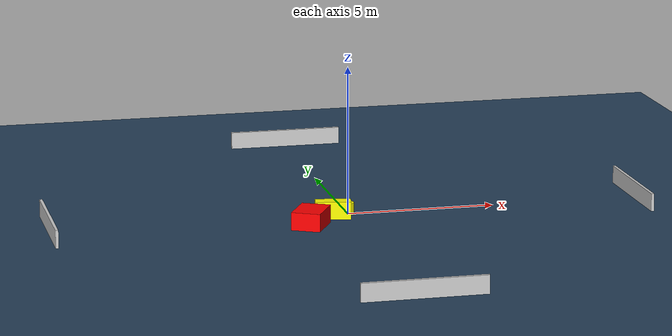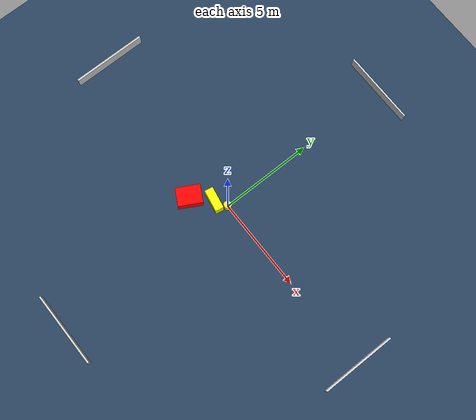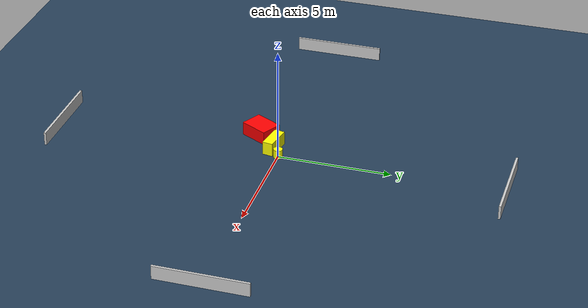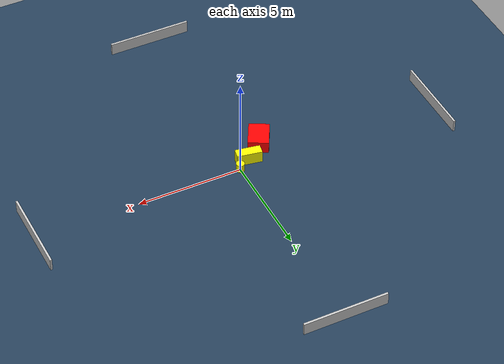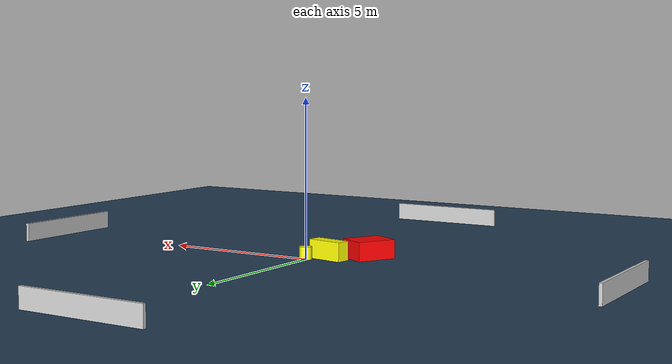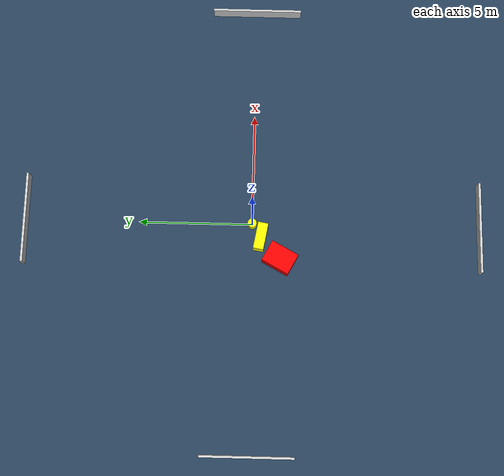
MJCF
<?xml version="1.0" ?>
<mujoco model="generated_environment">
  <option timestep="0.01" integrator="RK4" cone="elliptic"/>
  <default>
    <geom density="1"/>
  </default>
  <asset>
    <texture builtin="gradient" height="3072" name="skybox" rgb1="0.3 0.5 0.7" rgb2="0 0 0" type="skybox" width="512"/>
    <texture builtin="checker" height="300" name="groundplane" rgb1="0.2 0.3 0.4" rgb2="0.1 0.2 0.3" type="2d" width="300"/>
    <material name="groundplane" reflectance="0.2" texrepeat="5 5" texture="groundplane"/>
  </asset>
  <worldbody>
    <light dir="0 0 -1" directional="true" pos="0 0 1.5"/>
    <geom condim="3" friction="0.5 0.005 0.001" material="groundplane" name="floor" pos="0 0 0" size="0 0 0.05" type="plane"/>
    <body name="walls">
      <geom name="wall_1" condim="4" pos="-10.0 0.0 0.3" rgba="0.800000011920929 0.800000011920929 0.800000011920929 1.0" size="0.05 2.0 0.3" type="box"/>
      <geom name="wall_2" condim="4" pos="10.0 0.0 0.3" rgba="0.800000011920929 0.800000011920929 0.800000011920929 1.0" size="0.05 2.0 0.3" type="box"/>
      <geom name="wall_3" condim="4" pos="0.0 -10.0 0.3" rgba="0.800000011920929 0.800000011920929 0.800000011920929 1.0" size="2.0 0.05 0.3" type="box"/>
      <geom name="wall_4" condim="4" pos="0.0 10.0 0.3" rgba="0.800000011920929 0.800000011920929 0.800000011920929 1.0" size="2.0 0.05 0.3" type="box"/>
    </body>
    <body name="robot">
      <joint name="joint_x" type="slide" pos="0 0 0" axis="1 0 0"/>
      <joint name="joint_y" type="slide" pos="0 0 0" axis="0 1 0"/>
      <geom name="robot" type="cylinder" pos="0.0 0.0 0.2" size="0.2 0.2 0.0" mass="5.0" friction="1.0 0.005 0.0001" condim="4" rgba="1.0 1.0 0.0 1.0"/>
    </body>
    <body name="obstacle_1_movable">
      <geom name="obstacle_1_movable" condim="4" pos="-0.6036914737658733 -0.38379805473789613 0.3" euler="0 0 169.86990743417422" friction="0.0 0.005 0.001" rgba="1.0 1.0 0.0 1.0" size="0.5957480663501589 0.22821838982502288 0.3" type="box" mass="0.1"/>
      <joint type="free"/>
    </body>
    <body name="obstacle_2_static">
      <geom name="obstacle_2_static" condim="4" pos="-1.5418838253858724 -1.2432300086172239 0.3" euler="0 0 61.60645476972811" friction="0.0 0.005 0.001" rgba="1.0 0.0 0.0 1.0" size="0.647245804665187 0.4870795413762817 0.3" type="box"/>
    </body>
  </worldbody>
  <actuator>
    <motor name="actuator_x" joint="joint_x" gear="1" ctrlrange="-1 1"/>
    <motor name="actuator_y" joint="joint_y" gear="1" ctrlrange="-1 1"/>
  </actuator>
</mujoco>
